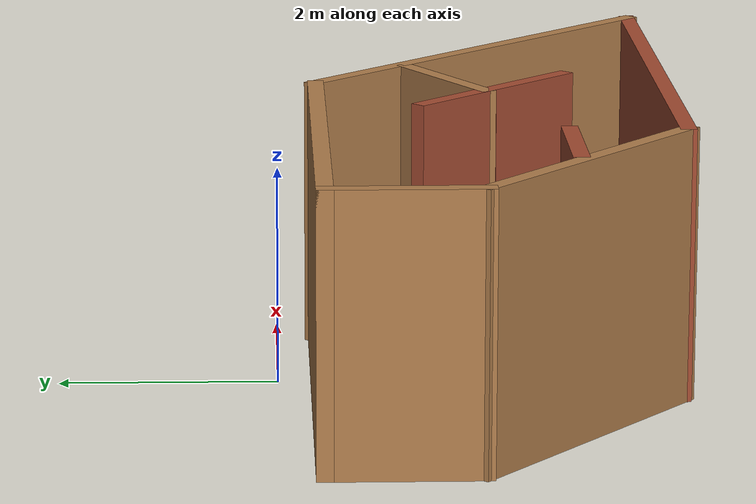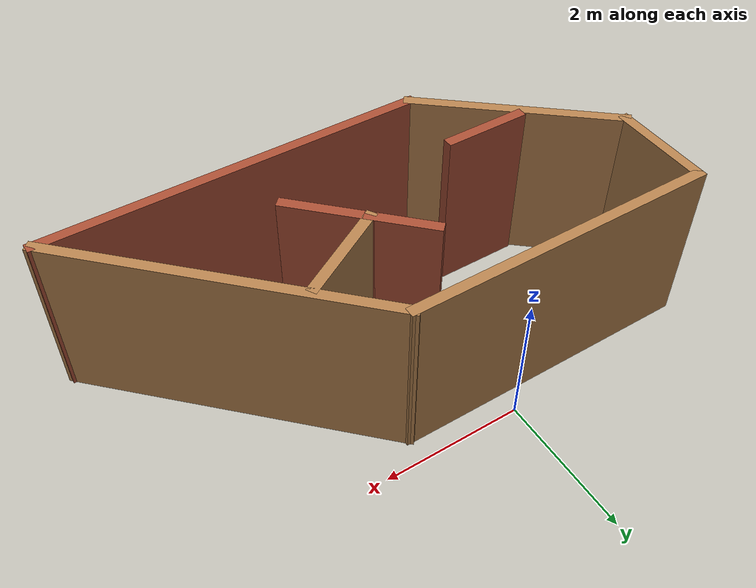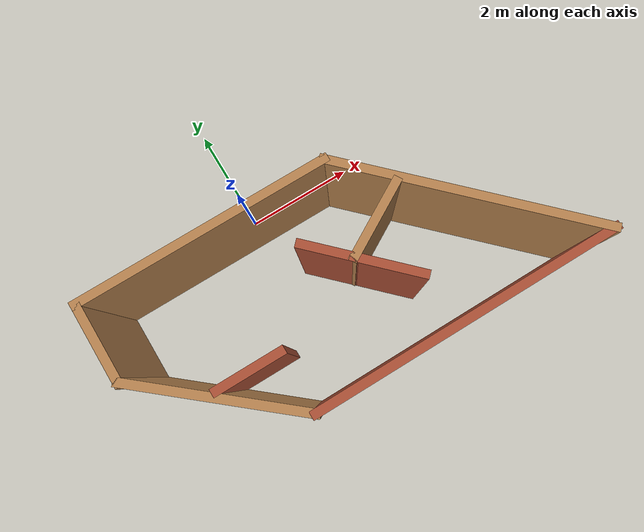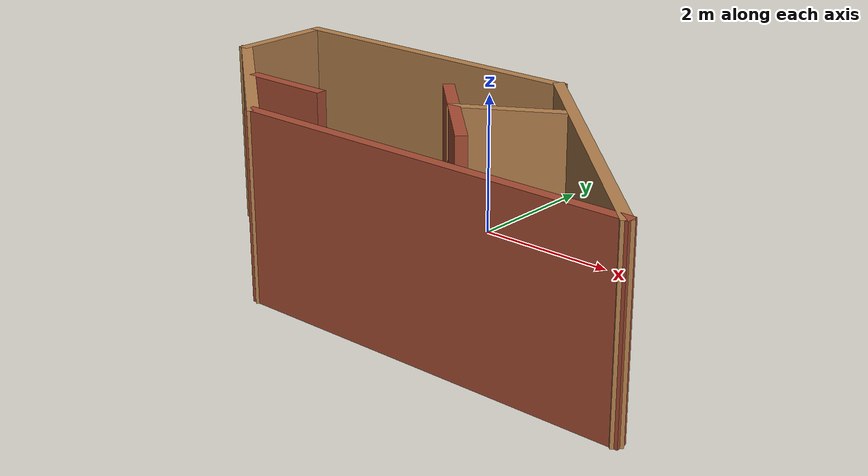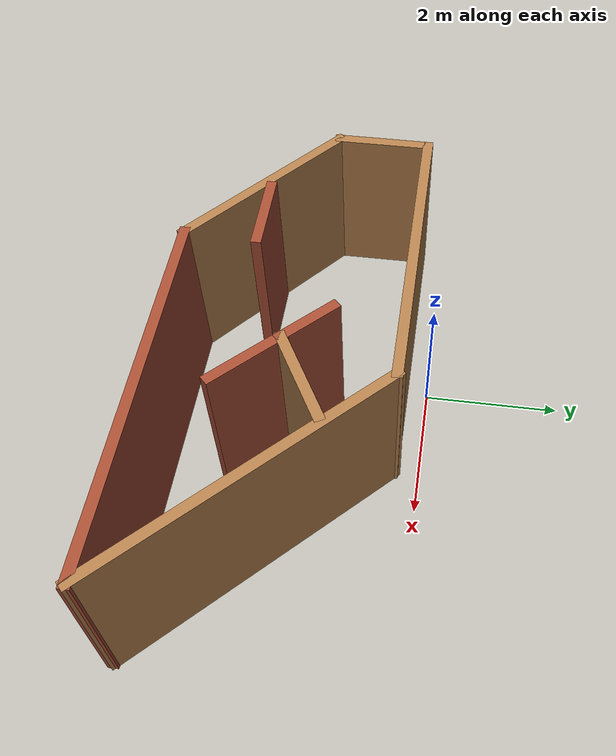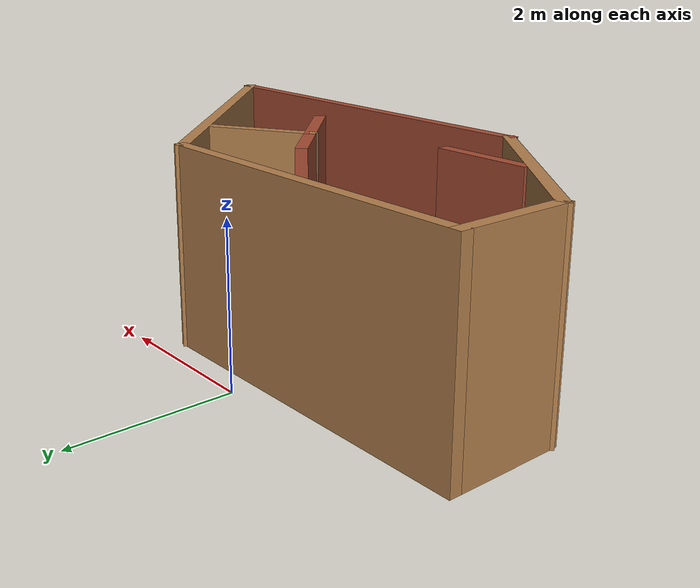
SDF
<?xml version='1.0'?>
<sdf version='1.7'>
  <model name='sim_world'>
    <pose>0.881533 -1.86438 0 0 -0 0</pose>
    <link name='Wall_40'>
      <collision name='Wall_40_Collision'>
        <geometry>
          <box>
            <size>1.5 0.15 2.5</size>
          </box>
        </geometry>
        <pose>0 0 1.25 0 -0 0</pose>
      </collision>
      <visual name='Wall_40_Visual'>
        <pose>0 0 1.25 0 -0 0</pose>
        <geometry>
          <box>
            <size>1.5 0.15 2.5</size>
          </box>
        </geometry>
        <material>
          <script>
            <uri>file://media/materials/scripts/gazebo.material</uri>
            <name>Gazebo/Wood</name>
          </script>
          <ambient>1 1 1 1</ambient>
        </material>
        <meta>
          <layer>0</layer>
        </meta>
      </visual>
      <pose>-3.80153 0.819379 0 0 -0 -1.5708</pose>
    </link>
    <link name='Wall_42'>
      <collision name='Wall_42_Collision'>
        <geometry>
          <box>
            <size>4.5 0.15 2.5</size>
          </box>
        </geometry>
        <pose>0 0 1.25 0 -0 0</pose>
      </collision>
      <visual name='Wall_42_Visual'>
        <pose>0 0 1.25 0 -0 0</pose>
        <geometry>
          <box>
            <size>4.5 0.15 2.5</size>
          </box>
        </geometry>
        <material>
          <script>
            <uri>file://media/materials/scripts/gazebo.material</uri>
            <name>Gazebo/Wood</name>
          </script>
          <ambient>1 1 1 1</ambient>
        </material>
        <meta>
          <layer>0</layer>
        </meta>
      </visual>
      <pose>-1.62653 1.49438 0 0 -0 0</pose>
    </link>
    <link name='Wall_43'>
      <collision name='Wall_43_Collision'>
        <geometry>
          <box>
            <size>4.75 0.15 2.5</size>
          </box>
        </geometry>
        <pose>0 0 1.25 0 -0 0</pose>
      </collision>
      <visual name='Wall_43_Visual'>
        <pose>0 0 1.25 0 -0 0</pose>
        <geometry>
          <box>
            <size>4.75 0.15 2.5</size>
          </box>
        </geometry>
        <material>
          <script>
            <uri>file://media/materials/scripts/gazebo.material</uri>
            <name>Gazebo/Wood</name>
          </script>
          <ambient>1 1 1 1</ambient>
        </material>
        <meta>
          <layer>0</layer>
        </meta>
      </visual>
      <pose>2.17481 -0.131967 0 0 -0 -0.785398</pose>
    </link>
    <link name='Wall_45'>
      <collision name='Wall_45_Collision'>
        <geometry>
          <box>
            <size>5.5 0.15 2.5</size>
          </box>
        </geometry>
        <pose>0 0 1.25 0 -0 0</pose>
      </collision>
      <visual name='Wall_45_Visual'>
        <pose>0 0 1.25 0 -0 0</pose>
        <geometry>
          <box>
            <size>5.5 0.15 2.5</size>
          </box>
        </geometry>
        <material>
          <script>
            <uri>file://media/materials/scripts/gazebo.material</uri>
            <name>Gazebo/Bricks</name>
          </script>
          <ambient>1 1 1 1</ambient>
        </material>
        <meta>
          <layer>0</layer>
        </meta>
      </visual>
      <pose>1.12616 -1.75831 0 0 -0 3.14159</pose>
    </link>
    <link name='Wall_46'>
      <collision name='Wall_46_Collision'>
        <geometry>
          <box>
            <size>3.0987 0.15 2.5</size>
          </box>
        </geometry>
        <pose>0 0 1.25 0 -0 0</pose>
      </collision>
      <visual name='Wall_46_Visual'>
        <pose>0 0 1.25 0 -0 0</pose>
        <geometry>
          <box>
            <size>3.0987 0.15 2.5</size>
          </box>
        </geometry>
        <material>
          <script>
            <uri>file://media/materials/scripts/gazebo.material</uri>
            <name>Gazebo/Wood</name>
          </script>
          <ambient>1 1 1 1</ambient>
        </material>
        <meta>
          <layer>0</layer>
        </meta>
      </visual>
      <pose>-2.67519 -0.806967 0 0 -0 2.44022</pose>
    </link>
    <link name='Wall_48'>
      <collision name='Wall_48_Collision'>
        <geometry>
          <box>
            <size>1.5 0.15 2.5</size>
          </box>
        </geometry>
        <pose>0 0 1.25 0 -0 0</pose>
      </collision>
      <visual name='Wall_48_Visual'>
        <pose>0 0 1.25 0 -0 0</pose>
        <geometry>
          <box>
            <size>1.5 0.15 2.5</size>
          </box>
        </geometry>
        <material>
          <script>
            <uri>file://media/materials/scripts/gazebo.material</uri>
            <name>Gazebo/Wood</name>
          </script>
          <ambient>1 1 1 1</ambient>
        </material>
        <meta>
          <layer>0</layer>
        </meta>
      </visual>
      <pose>0.7339 0.266879 0 0 -0 -2.61799</pose>
    </link>
    <link name='Wall_49'>
      <collision name='Wall_49_Collision'>
        <geometry>
          <box>
            <size>1 0.15 2.5</size>
          </box>
        </geometry>
        <pose>0 0 1.25 0 -0 0</pose>
      </collision>
      <visual name='Wall_49_Visual'>
        <pose>0 0 1.25 0 -0 0</pose>
        <geometry>
          <box>
            <size>1 0.15 2.5</size>
          </box>
        </geometry>
        <material>
          <script>
            <uri>file://media/materials/scripts/gazebo.material</uri>
            <name>Gazebo/Bricks</name>
          </script>
          <ambient>1 1 1 1</ambient>
        </material>
        <meta>
          <layer>0</layer>
        </meta>
      </visual>
      <pose>-0.151187 0.229899 0 0 -0 2.35619</pose>
    </link>
    <link name='Wall_51'>
      <collision name='Wall_51_Collision'>
        <geometry>
          <box>
            <size>1.25 0.15 2.5</size>
          </box>
        </geometry>
        <pose>0 0 1.25 0 -0 0</pose>
      </collision>
      <visual name='Wall_51_Visual'>
        <pose>0 0 1.25 0 -0 0</pose>
        <geometry>
          <box>
            <size>1.25 0.15 2.5</size>
          </box>
        </geometry>
        <material>
          <script>
            <uri>file://media/materials/scripts/gazebo.material</uri>
            <name>Gazebo/Bricks</name>
          </script>
          <ambient>1 1 1 1</ambient>
        </material>
        <meta>
          <layer>0</layer>
        </meta>
      </visual>
      <pose>0.538242 -0.45953 0 0 -0 -0.785398</pose>
    </link>
    <link name='Wall_53'>
      <collision name='Wall_53_Collision'>
        <geometry>
          <box>
            <size>1.25 0.15 2.5</size>
          </box>
        </geometry>
        <pose>0 0 1.25 0 -0 0</pose>
      </collision>
      <visual name='Wall_53_Visual'>
        <pose>0 0 1.25 0 -0 0</pose>
        <geometry>
          <box>
            <size>1.25 0.15 2.5</size>
          </box>
        </geometry>
        <material>
          <script>
            <uri>file://media/materials/scripts/gazebo.material</uri>
            <name>Gazebo/Bricks</name>
          </script>
          <ambient>1 1 1 1</ambient>
        </material>
        <meta>
          <layer>0</layer>
        </meta>
      </visual>
      <pose>-2.08153 -0.715621 0 0 -0 0</pose>
    </link>
    <static>1</static>
  </model>
</sdf>
